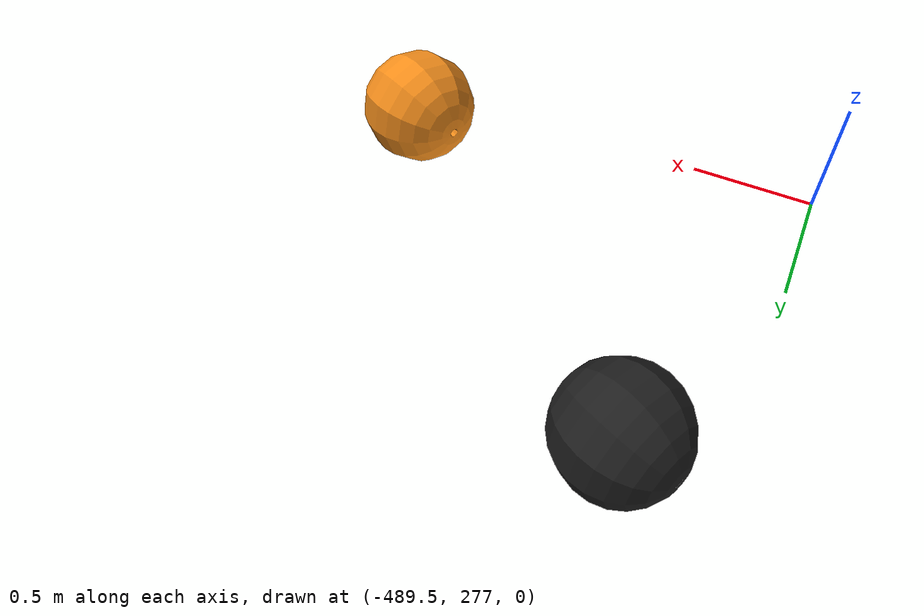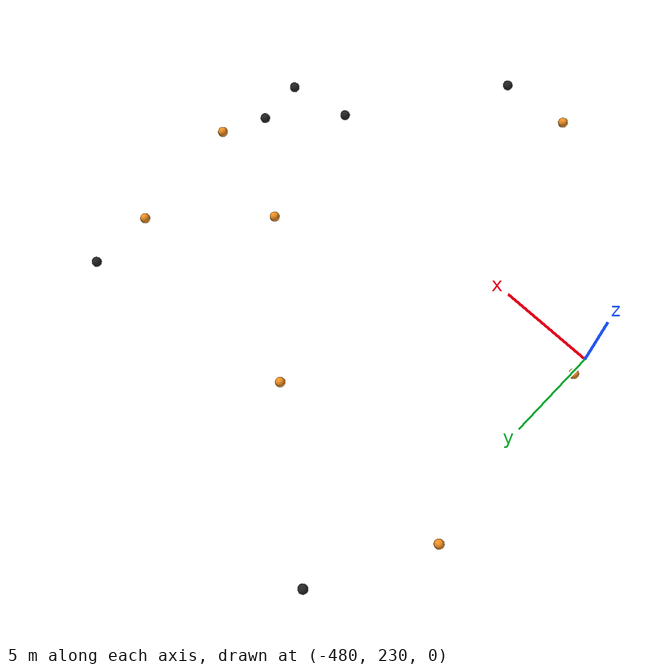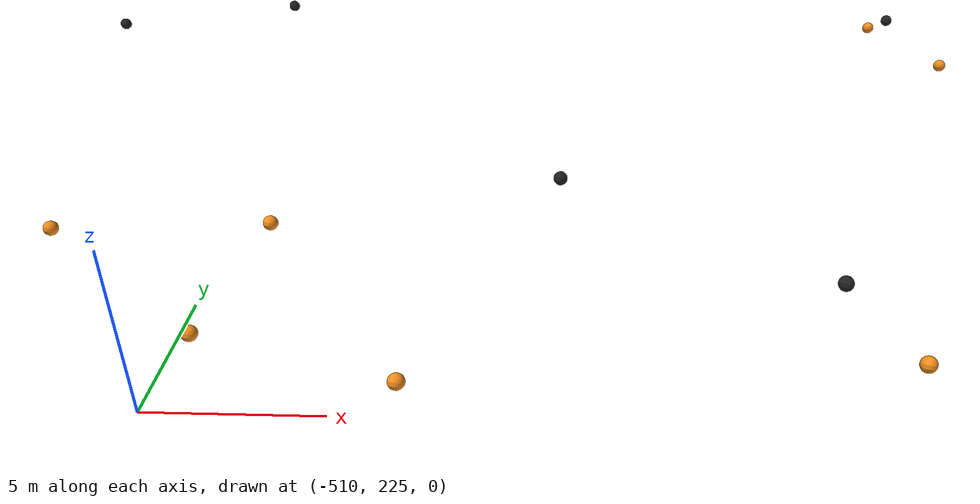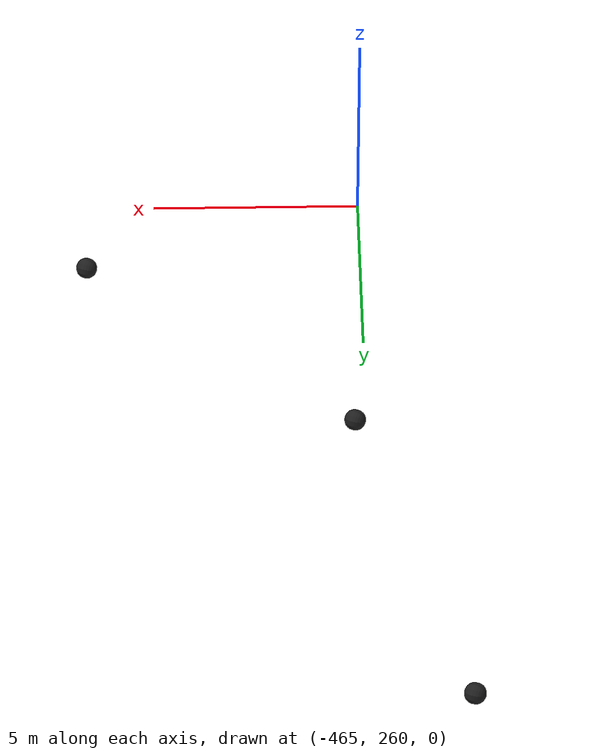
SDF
<sdf version="1.6">
 <world name="robotx_example_course">
  <spherical_coordinates>
   <surface_model>EARTH_WGS84</surface_model>
   <world_frame_orientation>ENU</world_frame_orientation>
   <latitude_deg>-33.724223</latitude_deg>
   <longitude_deg>150.679736</longitude_deg>
   <elevation>0.0</elevation>
   <heading_deg>0.0</heading_deg>
  </spherical_coordinates>
  <include><uri>model://sun</uri></include>
  <include>
   <name>post_0</name>
   <pose>-535.916809 154.362869 0.675884 -0.17182 0.030464 -0.005286</pose>
   <uri>model://post</uri>
  </include>
  <include>
   <name>post_1</name>
   <pose>-527.48999 153.854782 0.425844 -0.1365 0  0</pose>
   <uri>model://post</uri>
  </include>
  <include>
   <name>post_2</name>
   <pose>-544.832825 156.671951 0.499025 -0.162625 0 0</pose>
   <uri>model://post</uri>
  </include>
  <include>
   <name>blue_projectile</name>
   <pose>-545 60 0.03 0 0 0</pose>
   <uri>model://blue_projectile</uri>
  </include>
  <plugin filename="libusv_gazebo_wind_plugin.so" name="wind">
   <wind_obj>
    <name>wamv</name>
    <link_name>wamv/base_link</link_name>
    <coeff_vector>.5 .5 .33</coeff_vector>
   </wind_obj>
   <wind_direction>180</wind_direction>
   <wind_mean_velocity>8.0</wind_mean_velocity>
   <var_wind_gain_constants>5.0</var_wind_gain_constants>
   <var_wind_time_constants>2</var_wind_time_constants>
   <random_seed>13</random_seed>
   <update_rate>10</update_rate>
   <topic_wind_speed>/vrx/debug/wind/speed</topic_wind_speed>
   <topic_wind_direction>/vrx/debug/wind/direction</topic_wind_direction>
  </plugin>
  <scene>
   <sky><clouds><speed>12</speed></clouds></sky>
   <grid>0</grid>
   <origin_visual>0</origin_visual>
   <fog><type>linear</type><color>0.7 0.7 0.7 1</color><density>0.1</density></fog>
   <ambient>0.3 0.3 0.3 1</ambient>
  </scene>
  <include>
   <name>gymkhana_obstacle_course</name>
   <uri>model://obstacles_phase2_3</uri>
   <pose>-491 253 0 0 0 1.17</pose>
  </include>
  <plugin filename="libgymkhana_vrx_scoring_plugin.so" name="gymkhana_scoring_plugin">
   <vehicle>wamv</vehicle>
   <task_name>gymkhana</task_name>
   <task_info_topic>/vrx/task/info</task_info_topic>
   <contact_debug_topic>/vrx/debug/contact</contact_debug_topic>
   <initial_state_duration>10</initial_state_duration>
   <ready_state_duration>10</ready_state_duration>
   <running_state_duration>300</running_state_duration>
   <per_plugin_exit_on_completion>true</per_plugin_exit_on_completion>
   <obstacle_penalty>1</obstacle_penalty>
   <set_position_topic_name>/wamv/sensors/pingers/pinger/set_pinger_position</set_position_topic_name>
   <pinger_position>-472 245 0</pinger_position>
  </plugin>
  <plugin filename="libnavigation_scoring_plugin.so" name="navigation_scoring_plugin">
   <vehicle>wamv</vehicle>
   <task_name>gymkhana_channel</task_name>
   <task_info_topic>/vrx/gymkhana_channel/task/info</task_info_topic>
   <contact_debug_topic>/vrx/gymkhana_channel/debug/contact</contact_debug_topic>
   <per_plugin_exit_on_completion>false</per_plugin_exit_on_completion>
   <initial_state_duration>10</initial_state_duration>
   <ready_state_duration>10</ready_state_duration>
   <running_state_duration>300</running_state_duration>
   <collision_buffer>10</collision_buffer>
   <release_joints>
    <joint><name>wamv_external_pivot_joint</name></joint>
    <joint><name>wamv_external_riser</name></joint>
   </release_joints>
   <course_name>gymkhana_navigation_course</course_name>
   <obstacle_penalty>10.0</obstacle_penalty>
   <gates>
    <gate><left_marker>red_bound_0</left_marker><right_marker>white_bound_0</right_marker></gate>
    <gate><left_marker>red_bound_1</left_marker><right_marker>green_bound_1</right_marker></gate>
    <gate><left_marker>red_bound_2</left_marker><right_marker>green_bound_2</right_marker></gate>
    <gate><left_marker>red_bound_3</left_marker><right_marker>green_bound_3</right_marker></gate>
    <gate><left_marker>red_bound_4</left_marker><right_marker>black_bound_4</right_marker></gate>
   </gates>
   <silent>true</silent>
  </plugin>
  <plugin filename="libstationkeeping_scoring_plugin.so" name="stationkeeping_scoring_plugin">
   <vehicle>wamv</vehicle>
   <task_name>gymkhana_blackbox</task_name>
   <mean_error_topic>/vrx/gymkhana_blackbox/mean_pose_error</mean_error_topic>
   <pose_error_topic>/vrx/gymkhana_blackbox/pose_error</pose_error_topic>
   <goal_topic>/vrx/gymkhana_blackbox/goal</goal_topic>
   <task_info_topic>/vrx/gymkhana_blackbox/task/info</task_info_topic>
   <contact_debug_topic>/vrx/gymkhana_blackbox/debug/contact</contact_debug_topic>
   <per_plugin_exit_on_completion>false</per_plugin_exit_on_completion>
   <head_error_on>false</head_error_on>
   <goal_pose_cart>-472 245 0</goal_pose_cart>
   <initial_state_duration>10</initial_state_duration>
   <ready_state_duration>10</ready_state_duration>
   <running_state_duration>300</running_state_duration>
   <release_joints>
    <joint><name>wamv_external_pivot_joint</name></joint>
    <joint><name>wamv_external_riser</name></joint>
   </release_joints>
   <markers><scaling>0.2 0.2 2.0</scaling><height>0.5</height></markers>
   <silent>true</silent>
  </plugin>
 </world>
</sdf>

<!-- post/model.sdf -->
<sdf version="1.6">
  <model name="post">
    <static>true</static>
    <pose>0 0 0 0 0 0</pose>
    <link name="base_link">
      <visual name="visual_1">
        <geometry>
          <box>
            <size>1 0.2 0.2</size>
          </box>
        </geometry>
      </visual>
      <visual name="visual_2">
        <pose>0.4 0 0 0 0 0</pose>
        <geometry>
          <box>
            <size>0.4 0.4 0.4</size>
          </box>
        </geometry>
      </visual>
      <collision name="collision">
        <pose>0 0 0.5 0 0 0</pose>
        <geometry>
          <box>
            <size>1 0.2 1</size>
          </box>
        </geometry>
      </collision>
    </link>
  </model>
</sdf>

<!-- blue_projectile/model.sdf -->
<sdf version="1.6">
  <model name="blue_projectile">
    <link name="link">
      <inertial>
        <mass>0.04</mass>
        <!-- Mark only - based on cylinder -->
        <inertia>
          <ixx>0.00002166</ixx>
          <ixy>0</ixy>
          <ixz>0</ixz>
          <iyy>00002166</iyy>
          <iyz>0</iyz>
          <izz>00002166</izz>
        </inertia>
      </inertial>
      <collision name="collision">
        <geometry>
          <sphere>
            <radius>0.0285</radius>
          </sphere>
        </geometry>
      </collision>
      <visual name="visual">
        <geometry>
	        <sphere>
            <radius>0.0285</radius>
          </sphere>
        </geometry>
        <material>
          <script>
            <uri>model://blue_projectile/materials/scripts/blue_projectile.material</uri>
            <name>blue_projectile/Blue</name>
          </script>
        </material>
      </visual>
    </link>
    <plugin name="BuoyancyPlugin" filename="libbuoyancy_gazebo_plugin.so">
      <wave_model>ocean_waves</wave_model>
      <fluid_density>1000</fluid_density>
      <fluid_level>0.0</fluid_level>
      <linear_drag>25.0</linear_drag>
      <angular_drag>2.0</angular_drag>
      <buoyancy name="buoyancy_sphere">
        <link_name>link</link_name>
        <pose>0 0 -0.02 0 0 0</pose>
        <geometry>
          <sphere>
            <radius>0.0285</radius>
          </sphere>
        </geometry>
      </buoyancy>
    </plugin>
  </model>
</sdf>

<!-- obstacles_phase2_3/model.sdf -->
<!-- automatically generated by the 'generate_avoid_obstacles_buoys.py' script -->
<sdf version="1.6">
  <model name="obstacles_phase2_3">
    <include>
      <name>mb_round_buoy_orange_0</name>
      <pose>-5.120407828639699 -37.925901453768695 0.0 0 0 0 </pose>
      <uri>model://mb_round_buoy_orange</uri>
    </include>

    <include>
      <name>mb_round_buoy_orange_1</name>
      <pose>3.9729982302967315 -5.174208590537852 0.0 0 0 0 </pose>
      <uri>model://mb_round_buoy_orange</uri>
    </include>

    <include>
      <name>mb_round_buoy_orange_2</name>
      <pose>-6.370575833000878 -13.57321431969007 0.0 0 0 0 </pose>
      <uri>model://mb_round_buoy_orange</uri>
    </include>

    <include>
      <name>mb_round_buoy_orange_3</name>
      <pose>-23.6281092769726 9.541677308053096 0.0 0 0 0 </pose>
      <uri>model://mb_round_buoy_orange</uri>
    </include>

    <include>
      <name>mb_round_buoy_orange_4</name>
      <pose>-16.02762610603815 -18.65381799177067 0.0 0 0 0 </pose>
      <uri>model://mb_round_buoy_orange</uri>
    </include>

    <include>
      <name>mb_round_buoy_orange_5</name>
      <pose>9.69070662154359 2.3313675421631217 0.0 0 0 0 </pose>
      <uri>model://mb_round_buoy_orange</uri>
    </include>

    <include>
      <name>mb_round_buoy_orange_6</name>
      <pose>-29.233604372405317 1.0862497012597174 0.0 0 0 0 </pose>
      <uri>model://mb_round_buoy_orange</uri>
    </include>

    <include>
      <name>mb_round_buoy_orange_7</name>
      <pose>-25.244810748246778 22.826811825333877 0.0 0 0 0 </pose>
      <uri>model://mb_round_buoy_orange</uri>
    </include>

    <include>
      <name>mb_round_buoy_orange_8</name>
      <pose>28.318023411159103 -0.4610530094457772 0.0 0 0 0 </pose>
      <uri>model://mb_round_buoy_orange</uri>
    </include>

    <include>
      <name>mb_round_buoy_orange_9</name>
      <pose>27.72491882859744 -33.62836183927512 0.0 0 0 0 </pose>
      <uri>model://mb_round_buoy_orange</uri>
    </include>

    <include>
      <name>mb_round_buoy_orange_10</name>
      <pose>0.4196872097363169 -34.77707964904975 0.0 0 0 0 </pose>
      <uri>model://mb_round_buoy_orange</uri>
    </include>

    <include>
      <name>mb_round_buoy_orange_11</name>
      <pose>-5.7502137922088465 -32.27752674715099 0.0 0 0 0 </pose>
      <uri>model://mb_round_buoy_orange</uri>
    </include>

    <include>
      <name>mb_round_buoy_orange_12</name>
      <pose>-29.827202263897803 7.739624718287665 0.0 0 0 0 </pose>
      <uri>model://mb_round_buoy_orange</uri>
    </include>

    <include>
      <name>mb_round_buoy_orange_13</name>
      <pose>-21.91903995166113 -31.444345255201362 0.0 0 0 0 </pose>
      <uri>model://mb_round_buoy_orange</uri>
    </include>

    <include>
      <name>mb_round_buoy_orange_14</name>
      <pose>-22.375503434355224 -12.013897199736057 0.0 0 0 0 </pose>
      <uri>model://mb_round_buoy_orange</uri>
    </include>

    <include>
      <name>mb_round_buoy_orange_15</name>
      <pose>-2.5770012334159844 -23.860541898802772 0.0 0 0 0 </pose>
      <uri>model://mb_round_buoy_orange</uri>
    </include>

    <include>
      <name>mb_round_buoy_orange_16</name>
      <pose>11.232538017193185 -1.3544131558598664 0.0 0 0 0 </pose>
      <uri>model://mb_round_buoy_orange</uri>
    </include>

    <include>
      <name>mb_round_buoy_orange_17</name>
      <pose>0.41893760148393255 -9.048587910515256 0.0 0 0 0 </pose>
      <uri>model://mb_round_buoy_orange</uri>
    </include>

    <include>
      <name>mb_round_buoy_orange_18</name>
      <pose>23.490996355326168 6.40033431022453 0.0 0 0 0 </pose>
      <uri>model://mb_round_buoy_orange</uri>
    </include>

    <include>
      <name>mb_round_buoy_orange_19</name>
      <pose>-27.016112119814892 16.0601877285725 0.0 0 0 0 </pose>
      <uri>model://mb_round_buoy_orange</uri>
    </include>

    <include>
      <name>mb_round_buoy_black_0</name>
      <pose>37.16408640714042 0.0006688936173375737 0.0 0 0 0 </pose>
      <uri>model://mb_round_buoy_black</uri>
    </include>

    <include>
      <name>mb_round_buoy_black_1</name>
      <pose>31.1616051156916 -12.670907786311226 0.0 0 0 0 </pose>
      <uri>model://mb_round_buoy_black</uri>
    </include>

    <include>
      <name>mb_round_buoy_black_2</name>
      <pose>5.37153021021674 -5.796322936311199 0.0 0 0 0 </pose>
      <uri>model://mb_round_buoy_black</uri>
    </include>

    <include>
      <name>mb_round_buoy_black_3</name>
      <pose>-5.06021895785608 22.12473479976802 0.0 0 0 0 </pose>
      <uri>model://mb_round_buoy_black</uri>
    </include>

    <include>
      <name>mb_round_buoy_black_4</name>
      <pose>2.8483338798125075 36.29937815558934 0.0 0 0 0 </pose>
      <uri>model://mb_round_buoy_black</uri>
    </include>

    <include>
      <name>mb_round_buoy_black_5</name>
      <pose>3.536652811848171 -33.432406217998015 0.0 0 0 0 </pose>
      <uri>model://mb_round_buoy_black</uri>
    </include>

    <include>
      <name>mb_round_buoy_black_6</name>
      <pose>-10.692607865998369 28.06804032036014 0.0 0 0 0 </pose>
      <uri>model://mb_round_buoy_black</uri>
    </include>

    <include>
      <name>mb_round_buoy_black_7</name>
      <pose>-7.497996556163933 -37.823810728412035 0.0 0 0 0 </pose>
      <uri>model://mb_round_buoy_black</uri>
    </include>

    <include>
      <name>mb_round_buoy_black_8</name>
      <pose>-20.225820880211735 -34.628450341043624 0.0 0 0 0 </pose>
      <uri>model://mb_round_buoy_black</uri>
    </include>

    <include>
      <name>mb_round_buoy_black_9</name>
      <pose>39.50816091370183 37.646425070173876 0.0 0 0 0 </pose>
      <uri>model://mb_round_buoy_black</uri>
    </include>

    <include>
      <name>mb_round_buoy_black_10</name>
      <pose>24.020668090606947 8.145369712437393 0.0 0 0 0 </pose>
      <uri>model://mb_round_buoy_black</uri>
    </include>

    <include>
      <name>mb_round_buoy_black_11</name>
      <pose>21.196788836134523 -26.461964273265764 0.0 0 0 0 </pose>
      <uri>model://mb_round_buoy_black</uri>
    </include>

    <include>
      <name>mb_round_buoy_black_12</name>
      <pose>-16.558141454444815 1.925350024029136 0.0 0 0 0 </pose>
      <uri>model://mb_round_buoy_black</uri>
    </include>

    <include>
      <name>mb_round_buoy_black_13</name>
      <pose>-11.470057510179288 -36.345682780367994 0.0 0 0 0 </pose>
      <uri>model://mb_round_buoy_black</uri>
    </include>

    <include>
      <name>mb_round_buoy_black_14</name>
      <pose>38.652275628577016 -4.691606451612259 0.0 0 0 0 </pose>
      <uri>model://mb_round_buoy_black</uri>
    </include>

    <include>
      <name>mb_round_buoy_black_15</name>
      <pose>0.32003515033220964 -14.116694597224093 0.0 0 0 0 </pose>
      <uri>model://mb_round_buoy_black</uri>
    </include>

    <include>
      <name>mb_round_buoy_black_16</name>
      <pose>-19.220419780229037 -9.048809174339006 0.0 0 0 0 </pose>
      <uri>model://mb_round_buoy_black</uri>
    </include>

    <include>
      <name>mb_round_buoy_black_17</name>
      <pose>26.56135197076007 18.939764502969034 0.0 0 0 0 </pose>
      <uri>model://mb_round_buoy_black</uri>
    </include>

    <include>
      <name>mb_round_buoy_black_18</name>
      <pose>-9.663154644669003 -38.95861306443595 0.0 0 0 0 </pose>
      <uri>model://mb_round_buoy_black</uri>
    </include>

    <include>
      <name>mb_round_buoy_black_19</name>
      <pose>23.792395122607488 -18.448896192295905 0.0 0 0 0 </pose>
      <uri>model://mb_round_buoy_black</uri>
    </include>

  </model>

</sdf>

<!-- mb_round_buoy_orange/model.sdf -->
<sdf version="1.6">
  <model name="mb_round_buoy_orange">
    <link name="link">
      <inertial>
        <pose>0 0 -2 0 0 0</pose>
        <!-- Mass determined based on buoyancy geometry so object
             floats at mid-point of sphere -->
        <mass>3.5</mass>
        <!-- Mark only - based on cylinder -->
        <inertia>
          <ixx>1.0</ixx>
          <ixy>0</ixy>
          <ixz>0</ixz>
          <iyy>1.0</iyy>
          <iyz>0</iyz>
          <izz>0.1</izz>
        </inertia>
      </inertial>
      <collision name="collision">
        <geometry>
          <sphere>
            <radius>0.25</radius>
          </sphere>
        </geometry>
      </collision>
      <visual name="visual">
        <geometry>
	        <mesh><uri>model://mb_round_buoy_orange/meshes/mb_round_buoy.dae</uri></mesh>
        </geometry>
        <material>
          <script>
            <uri>model://mb_round_buoy_orange/materials/scripts/mb_round_buoy.material</uri>
            <name>mb_round_buoy/Orange</name>
          </script>
        </material>
      </visual>
    </link>
    <plugin name="BuoyancyPlugin" filename="libbuoyancy_gazebo_plugin.so">
      <wave_model>ocean_waves</wave_model>
      <fluid_density>1000</fluid_density>
      <fluid_level>0.0</fluid_level>
      <linear_drag>25.0</linear_drag>
      <angular_drag>2.0</angular_drag>
      <buoyancy name="buoyancy_sphere">
        <link_name>link</link_name>
        <pose>0 0 0.02 0 0 0</pose>
        <geometry>
          <sphere>
            <radius>0.235</radius>
          </sphere>
        </geometry>
      </buoyancy>
    </plugin>
  </model>
</sdf>

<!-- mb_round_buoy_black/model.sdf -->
<sdf version="1.6">
  <model name="mb_round_buoy_black">
    <link name="link">
      <inertial>
        <pose>0 0 -2 0 0 0</pose>
        <!-- Mass determined based on buoyancy geometry so object
             floats at mid-point of sphere -->
        <mass>3.5</mass>
        <!-- Mark only - based on cylinder -->
        <inertia>
          <ixx>1.0</ixx>
          <ixy>0</ixy>
          <ixz>0</ixz>
          <iyy>1.0</iyy>
          <iyz>0</iyz>
          <izz>0.1</izz>
        </inertia>
      </inertial>
      <collision name="collision">
        <geometry>
          <sphere>
            <radius>0.25</radius>
          </sphere>
        </geometry>
      </collision>
      <visual name="visual">
        <geometry>
	        <mesh><uri>model://mb_round_buoy_orange/meshes/mb_round_buoy.dae</uri></mesh>
        </geometry>
        <material>
          <script>
            <uri>file://media/materials/scripts/gazebo.material</uri>
            <name>Gazebo/Black</name>
          </script>
        </material>
      </visual>
    </link>
    <plugin name="BuoyancyPlugin" filename="libbuoyancy_gazebo_plugin.so">
      <wave_model>ocean_waves</wave_model>
      <fluid_density>1000</fluid_density>
      <fluid_level>0.0</fluid_level>
      <linear_drag>25.0</linear_drag>
      <angular_drag>2.0</angular_drag>
      <buoyancy name="buoyancy_sphere">
        <link_name>link</link_name>
        <pose>0 0 0.02 0 0 0</pose>
        <geometry>
          <sphere>
            <radius>0.235</radius>
          </sphere>
        </geometry>
      </buoyancy>
    </plugin>
  </model>
</sdf>
